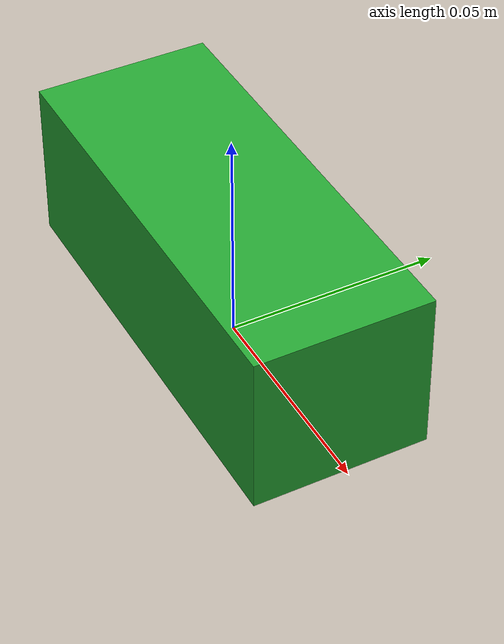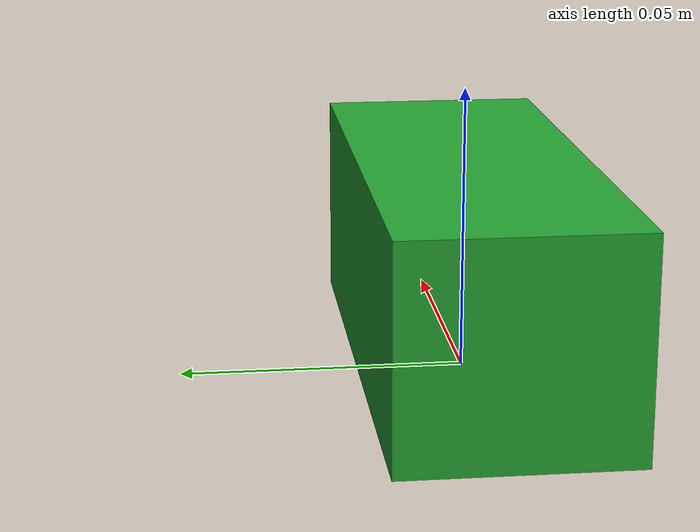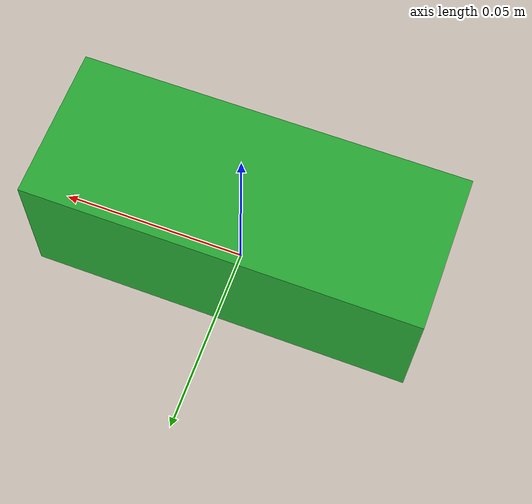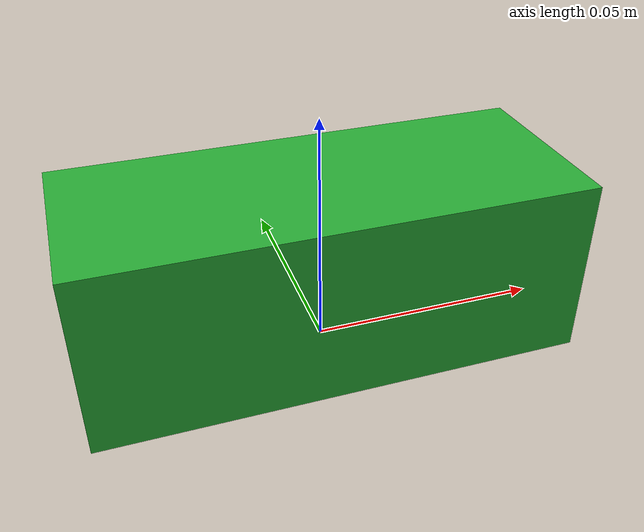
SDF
<?xml version="1.0" ?>
<sdf version="1.5">
  <model name="my6thmodel">
    <static>false</static>
    <link name="link">
      <collision name="collision">
        <geometry>
            <mesh>
                <uri>model://my6thmodel/meshes/shape2.dae</uri>
                <scale>0.002 0.002 0.0015</scale>
            </mesh>
        </geometry>
        <surface>
          <friction>
            <ode>
              <mu>100</mu>
              <mu2>50</mu2>
            </ode>
          </friction>
        </surface>
      </collision>
      <visual name="visual">
        <geometry>
            <mesh>
                <uri>model://my6thmodel/meshes/shape2.dae</uri>
                <scale>0.002 0.002 0.0015</scale>
            </mesh>
        </geometry>
        <material>
          <script>
            <uri>file://media/materials/scripts/gazebo.material</uri>
            <name>Gazebo/Green</name>
          </script>
        </material>
      </visual>
    </link>
  </model>
</sdf>
